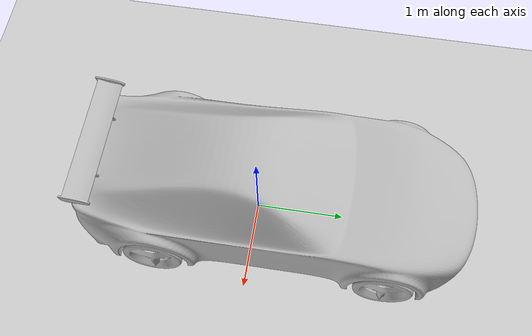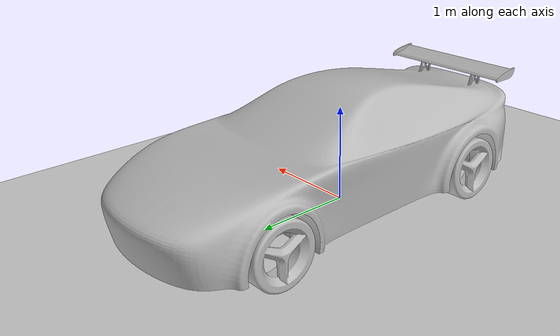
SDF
<?xml version="1.0"?>
<sdf version="1.6">
  <world name="default">
    <include>
      <uri>model://sun</uri>
    </include>

    <include>
      <uri>model://ground_plane</uri>
    </include>

    <model name="ngeeann_av">
      <pose>0 0 0.0 0 0 0</pose>

      <link name='base_link'/>

      <joint name='chassis_link_joint' type='fixed'>
        <pose>0.0 0.0 0.0 0 0 0</pose>
        <parent>base_link</parent>
        <child>chassis_link</child>
      </joint>

      <joint name="hokuyo_joint" type="fixed">
        <parent>base_link</parent>
        <child>hokuyo_link</child>
        <pose>0 0 0 0 0 0</pose>
        <axis>
          <xyz>0 0 1</xyz>
        </axis>
      </joint>

      <link name="hokuyo_link">
        <sensor name="head_hokuyo_sensor" type="ray">
          <always_on>true</always_on>
          <visualize>true</visualize>
          <pose relative_to='base_link'>0 2.34 0.72 0 0 1.5708</pose>
          <update_rate>40</update_rate>
          <ray>
            <scan>
              <horizontal>
                <samples>720</samples>
                <resolution>1.000000</resolution>
                <min_angle>-1.570796</min_angle>
                <max_angle>1.570796</max_angle>
              </horizontal>
            </scan>
            <range>
              <min>0.120000</min>
              <max>30.0</max>
              <resolution>0.010</resolution>
            </range>
            <noise>
              <type>gaussian</type>
              <mean>0.0</mean>
              <stddev>0.01</stddev>
            </noise>
          </ray>
          <plugin name="gazebo_ros_head_hokuyo_controller" filename="libgazebo_ros_ray_sensor.so">
            <ros>
              <remapping>~/out:=scan</remapping>
            </ros>
            <output_type>sensor_msgs/LaserScan</output_type>
            <frame_name>hokuyo_link</frame_name>
          </plugin>
        </sensor>
      </link>

      <link name='chassis_link'>
        <inertial>
          <pose>1e-06 0.07307 0.65096 0 -0 0</pose>
          <mass>1580</mass>
          <inertia>
            <ixx>1997.86</ixx>
            <ixy>-3e-05</ixy>
            <ixz>-1e-06</ixz>
            <iyy>442.769</iyy>
            <iyz>62.5206</iyz>
            <izz>2238.05</izz>
          </inertia>
        </inertial>
        <collision name='chassis_link_fixed_joint_lump__chassis_link_collision'>
          <pose>0 0 0.46936 0 -0 0</pose>
          <geometry>
            <mesh>
              <scale>0.001 0.001 0.001</scale>
              <uri>model://ngeeann_av/meshes/chassis_link.stl</uri>
            </mesh>
          </geometry>
          <surface>
            <contact>
              <ode/>
            </contact>
            <friction>
              <ode>
                <mu>0.2</mu>
                <mu2>0.2</mu2>
              </ode>
            </friction>
          </surface>
        </collision>
        <collision name='chassis_link_fixed_joint_lump__spoiler_link_collision_1'>
          <pose>0 0.05 0.41936 1.5708 -0 3.14159</pose>
          <geometry>
            <mesh>
              <scale>0.001 0.001 0.001</scale>
              <uri>model://ngeeann_av/meshes/spoiler.stl</uri>
            </mesh>
          </geometry>
          <surface>
            <contact>
              <ode/>
            </contact>
            <friction>
              <ode>
                <mu>0.2</mu>
                <mu2>0.2</mu2>
              </ode>
            </friction>
          </surface>
        </collision>
        <visual name='chassis_link_fixed_joint_lump__chassis_link_visual'>
          <pose>0 0 0.46936 0 -0 0</pose>
          <geometry>
            <mesh>
              <scale>0.001 0.001 0.001</scale>
              <uri>model://ngeeann_av/meshes/chassis_link.stl</uri>
            </mesh>
          </geometry>
        </visual>
        <visual name='chassis_link_fixed_joint_lump__spoiler_link_visual_1'>
          <pose>0 0.05 0.41936 1.5708 -0 3.14159</pose>
          <geometry>
            <mesh>
              <scale>0.001 0.001 0.001</scale>
              <uri>model://ngeeann_av/meshes/spoiler.stl</uri>
            </mesh>
          </geometry>
        </visual>
        <self_collide>1</self_collide>
      </link>

      <joint name='bl_axle' type='revolute'>
        <pose relative_to='chassis_link'>-0.875 -1.01364 0.324997 0 -0 0</pose>
        <parent>chassis_link</parent>
        <child>bl_1</child>
        <axis>
          <xyz>-1 0 0</xyz>
          <dynamics>
            <friction>12.031606150200002</friction>
          </dynamics>
        </axis>
      </joint>
      <link name='bl_1'>
        <pose relative_to='bl_axle'>0 0 0 0 -0 0</pose>
        <inertial>
          <pose>-0.0377 0 -0 0 -0 0</pose>
          <mass>24.5</mass>
          <inertia>
            <ixx>1.84514</ixx>
            <ixy>0</ixy>
            <ixz>0</ixz>
            <iyy>1.04961</iyy>
            <iyz>0</iyz>
            <izz>1.04961</izz>
          </inertia>
        </inertial>
        <collision name='bl_1_collision'>
          <pose relative_to='bl_axle'>0 0 0 0 1.5708 0</pose>
          <geometry>
            <cylinder>
              <radius>.3425</radius>
              <length>.22</length>
            </cylinder>
          </geometry>
          <surface>
            <contact>
              <ode/>
            </contact>
            <friction>
              <ode>
                <mu>1.7</mu>
                <mu2>1.7</mu2>
              </ode>
            </friction>
          </surface>
        </collision>
        <visual name='bl_1_visual'>
          <pose>0.875 1.0136 0.1444 0 -0 0</pose>
          <geometry>
            <mesh>
              <scale>0.001 0.001 0.001</scale>
              <uri>model://ngeeann_av/meshes/bl_1.stl</uri>
            </mesh>
          </geometry>
        </visual>
        <self_collide>1</self_collide>
      </link>
      <joint name='br_axle' type='revolute'>
        <pose relative_to='chassis_link'>0.875 -1.01364 0.324997 0 -0 0</pose>
        <parent>chassis_link</parent>
        <child>br_1</child>
        <axis>
          <xyz>-1 0 0</xyz>
          <dynamics>
            <friction>12.031606150200002</friction>
          </dynamics>
        </axis>
      </joint>
      <link name='br_1'>
        <pose relative_to='br_axle'>0 0 0 0 -0 0</pose>
        <inertial>
          <pose>-0.0377 0 -0 0 -0 0</pose>
          <mass>24.5</mass>
          <inertia>
            <ixx>1.84514</ixx>
            <ixy>0</ixy>
            <ixz>0</ixz>
            <iyy>1.04961</iyy>
            <iyz>0</iyz>
            <izz>1.04961</izz>
          </inertia>
        </inertial>
        <collision name='br_1_collision'>
          <pose relative_to='br_axle'>0 0 0 0 1.5708 0</pose>
          <geometry>
            <cylinder>
              <radius>.3425</radius>
              <length>.22</length>
            </cylinder>
          </geometry>
          <surface>
            <contact>
              <ode/>
            </contact>
            <friction>
              <ode>
                <mu>1.7</mu>
                <mu2>1.7</mu2>
              </ode>
            </friction>
          </surface>
        </collision>
        <visual name='br_1_visual'>
          <pose>-0.875 1.0136 0.1444 0 -0 0</pose>
          <geometry>
            <mesh>
              <scale>0.001 0.001 0.001</scale>
              <uri>model://ngeeann_av/meshes/br_1.stl</uri>
            </mesh>
          </geometry>
        </visual>
        <self_collide>1</self_collide>
      </link>
      <joint name='l_steer' type='revolute'>
        <pose relative_to='chassis_link'>-0.825 1.51736 0.324997 0 -0 0</pose>
        <parent>chassis_link</parent>
        <child>l_steer_1</child>
        <axis>
          <xyz>0 0 1</xyz>
          <limit>
            <lower>-0.95</lower>
            <upper>0.95</upper>
          </limit>
          <dynamics>
            <friction>18.0474092253</friction>
          </dynamics>
        </axis>
      </joint>
      <link name='l_steer_1'>
        <pose relative_to='l_steer'>0 0 0 0 -0 0</pose>
        <inertial>
          <pose>0.003381 0 0.02162 0 -0 0</pose>
          <mass>1</mass>
          <inertia>
            <ixx>1</ixx>
            <ixy>0</ixy>
            <ixz>0</ixz>
            <iyy>1</iyy>
            <iyz>0</iyz>
            <izz>1</izz>
          </inertia>
        </inertial>
        <self_collide>1</self_collide>
      </link>

      <joint name='fl_axle' type='revolute'>
        <pose relative_to='l_steer_1'>-0.05 0 0 0 -0 0</pose>
        <parent>l_steer_1</parent>
        <child>fl_1</child>
        <axis>
          <xyz>-1 0 0</xyz>
          <dynamics>
            <friction>12.031606150200002</friction>
          </dynamics>
        </axis>
      </joint>
      <link name='fl_1'>
        <pose relative_to='fl_axle'>0 0 0 0 -0 0</pose>
        <inertial>
          <pose>-0.0377 0 -0 0 -0 0</pose>
          <mass>24.5</mass>
          <inertia>
            <ixx>1.84514</ixx>
            <ixy>0</ixy>
            <ixz>0</ixz>
            <iyy>1.04961</iyy>
            <iyz>0</iyz>
            <izz>1.04961</izz>
          </inertia>
        </inertial>
        <collision name='fl_1_collision'>
          <pose>0.875 -1.5174 0.1444 0 -0 0</pose>
          <geometry>
            <mesh>
              <scale>0.001 0.001 0.001</scale>
              <uri>model://ngeeann_av/meshes/fl_1.stl</uri>
            </mesh>
          </geometry>
          <surface>
            <contact>
              <ode/>
            </contact>
            <friction>
              <ode>
                <mu>1.1</mu>
                <mu2>1.1</mu2>
              </ode>
            </friction>
          </surface>
        </collision>
        <visual name='fl_1_visual'>
          <pose>0.875 -1.5174 0.1444 0 -0 0</pose>
          <geometry>
            <mesh>
              <scale>0.001 0.001 0.001</scale>
              <uri>model://ngeeann_av/meshes/fl_1.stl</uri>
            </mesh>
          </geometry>
        </visual>
        <self_collide>1</self_collide>
      </link>
      <joint name='r_steer' type='revolute'>
        <pose relative_to='chassis_link'>0.825 1.51736 0.324997 0 -0 0</pose>
        <parent>chassis_link</parent>
        <child>r_steer_1</child>
        <axis>
          <xyz>0 0 1</xyz>
          <limit>
            <lower>-0.95</lower>
            <upper>0.95</upper>
          </limit>
          <dynamics>
            <damping>0.01</damping>
            <friction>18.0474092253</friction>
          </dynamics>
        </axis>
      </joint>
      <link name='r_steer_1'>
        <pose relative_to='r_steer'>0 0 0 0 -0 0</pose>
        <inertial>
          <pose>0.003381 0 0.02162 0 -0 0</pose>
          <mass>1</mass>
          <inertia>
            <ixx>1</ixx>
            <ixy>0</ixy>
            <ixz>0</ixz>
            <iyy>1</iyy>
            <iyz>0</iyz>
            <izz>1</izz>
          </inertia>
        </inertial>
        <self_collide>1</self_collide>
      </link>
      <joint name='fr_axle' type='revolute'>
        <pose relative_to='r_steer_1'>0.05 0 0 0 -0 0</pose>
        <parent>r_steer_1</parent>
        <child>fr_1</child>
        <axis>
          <xyz>-1 0 0</xyz>
          <dynamics>
            <friction>12.031606150200002</friction>
          </dynamics>
        </axis>
      </joint>
      <link name='fr_1'>
        <pose relative_to='fr_axle'>0 0 0 0 -0 0</pose>
        <inertial>
          <pose>-0.0377 0 -0 0 -0 0</pose>
          <mass>24.5</mass>
          <inertia>
            <ixx>1.84514</ixx>
            <ixy>0</ixy>
            <ixz>0</ixz>
            <iyy>1.04961</iyy>
            <iyz>0</iyz>
            <izz>1.04961</izz>
          </inertia>
        </inertial>
        <collision name='fr_1_collision'>
          <pose>-0.875 -1.5174 0.1444 0 -0 0</pose>
          <geometry>
            <mesh>
              <scale>0.001 0.001 0.001</scale>
              <uri>model://ngeeann_av/meshes/fr_1.stl</uri>
            </mesh>
          </geometry>
          <surface>
            <contact>
              <ode/>
            </contact>
            <friction>
              <ode>
                <mu>1.7</mu>
                <mu2>1.7</mu2>
              </ode>
            </friction>
          </surface>
        </collision>
        <visual name='fr_1_visual'>
          <pose>-0.875 -1.5174 0.1444 0 -0 0</pose>
          <geometry>
            <mesh>
              <scale>0.001 0.001 0.001</scale>
              <uri>model://ngeeann_av/meshes/fr_1.stl</uri>
            </mesh>
          </geometry>
        </visual>
        <self_collide>1</self_collide>
      </link>

      <link name="steering_wheel"/>

      <joint name="steering_joint" type="revolute">
        <pose>-0.002 0 0 0 0 0</pose>
        <parent>chassis_link</parent>
        <child>steering_wheel</child>
        <axis>
          <xyz>-0.964118 0.000768 0.265556</xyz>
          <limit>
            <lower>-100</lower>
            <upper>100</upper>
          </limit>
          <dynamics>
            <damping>1.0</damping>
          </dynamics>
          <use_parent_model_frame>true</use_parent_model_frame>
        </axis>
        <physics>
          <ode>
            <cfm_damping>1</cfm_damping>
          </ode>
        </physics>
      </joint>

      <plugin name='ackermann_drive' filename='libgazebo_ros_ackermann_drive.so'>

        <ros>
          <namespace>ngeeann_av</namespace>
          <remapping>cmd_vel:=cmd_vel</remapping>
          <remapping>odom:=odom</remapping>
          <remapping>distance:=distance</remapping>
        </ros>

        <update_rate>100.0</update_rate>

        <!-- wheels -->
        <front_left_joint>fl_axle</front_left_joint>
        <front_right_joint>fr_axle</front_right_joint>
        <rear_left_joint>bl_axle</rear_left_joint>
        <rear_right_joint>br_axle</rear_right_joint>
        <left_steering_joint>l_steer</left_steering_joint>
        <right_steering_joint>r_steer</right_steering_joint>
        <steering_wheel_joint>steering_joint</steering_wheel_joint>

        <!-- Max absolute steer angle for tyre in radians-->
        <!-- Any cmd_vel angular z greater than this would be capped -->
        <max_steer>0.85</max_steer>

        <!-- Max absolute steering angle of steering wheel -->
                <!-- Max absolute steering angle of steering wheel -->
        <max_steering_angle>7.85</max_steering_angle>

        <!-- Max absolute linear speed in m/s -->
        <max_speed>20</max_speed>

        <!-- PID tuning -->
        <left_steering_pid_gain>4000 0 1</left_steering_pid_gain>
        <left_steering_i_range>0 0</left_steering_i_range>
        <right_steering_pid_gain>4000 0 1</right_steering_pid_gain>
        <right_steering_i_range>0 0</right_steering_i_range>
        <linear_velocity_pid_gain>4000 0 1</linear_velocity_pid_gain>
        <linear_velocity_i_range>0 0</linear_velocity_i_range>

        <!-- output -->
        <publish_odom>true</publish_odom>
        <publish_odom_tf>true</publish_odom_tf>
        <publish_wheel_tf>true</publish_wheel_tf>
        <publish_distance>true</publish_distance>

        <odometry_frame>odom</odometry_frame>
        <robot_base_frame>base_link</robot_base_frame>

      </plugin>

    </model>

  </world>
</sdf>
